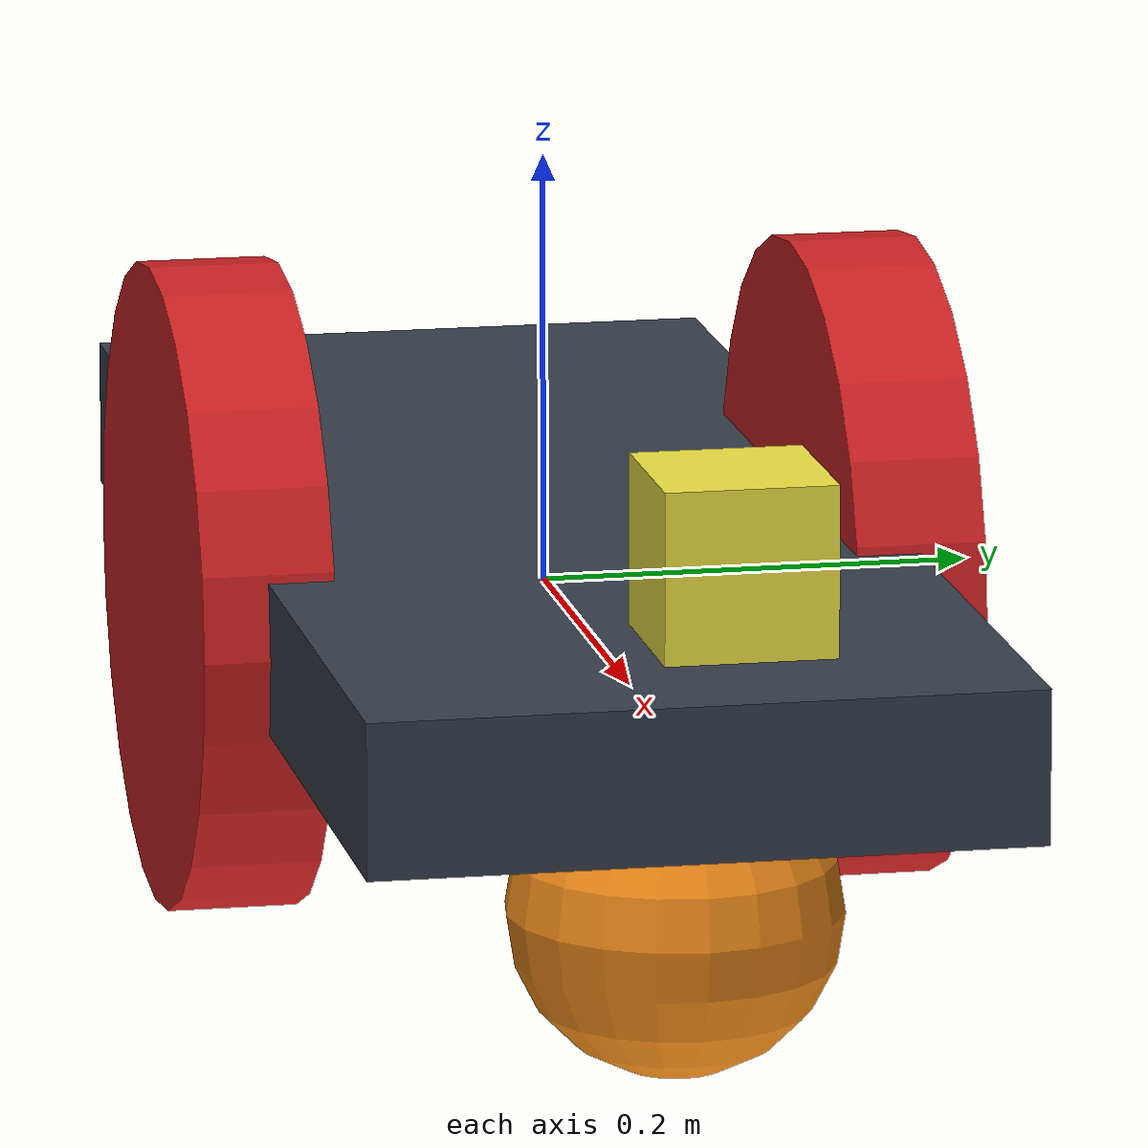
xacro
<?xml version="1.0"?>
<robot xmlns:xacro="http://www.ros.org/wiki/xacro" name="robot_xacro">
<xacro:include filename="$(find exp_assignment3)/urdf/robot.gazebo"/>

	<xacro:property name="length_wheel" value="0.06" />
	<xacro:property name="radius_wheel" value="0.15" />

	<xacro:macro name="default_inertial" params="mass">
               <inertial>
                       <mass value="${mass}" />
                       <origin rpy="0 1.5707 1.5707" xyz="0 0 0"/>
                       <inertia ixx="0.000526666666667" ixy="0" ixz="0" iyy="0.000526666666667" iyz="0" izz="0.001"/>
               </inertial>
	</xacro:macro>

    <xacro:macro name="wheel_geometry">
		<geometry>
       			<cylinder length="${length_wheel}" radius="${radius_wheel}"/>
     	</geometry>
	</xacro:macro>

  <material name="black">
    <color rgba="0.0 0.0 0.0 1.0"/>
  </material>
  <material name="blue">
    <color rgba="0.203125 0.23828125 0.28515625 1.0"/>
  </material>
  <material name="green">
    <color rgba="0.0 0.8 0.0 1.0"/>
  </material>
  <material name="grey">
    <color rgba="0.2 0.2 0.2 1.0"/>
  </material>
  <material name="orange">
    <color rgba="1.0 0.423529411765 0.0392156862745 1.0"/>
  </material>
  <material name="brown">
    <color rgba="0.870588235294 0.811764705882 0.764705882353 1.0"/>
  </material>
  <material name="red">
    <color rgba="0.80078125 0.12890625 0.1328125 1.0"/>
  </material>
  <material name="white">
    <color rgba="1.0 1.0 1.0 1.0"/>
  </material>

	    <!--#################  LINK PROPERTIES  ############## -->
	   <link name="link_chassis">
    <!-- pose and inertial -->
    <pose>0 0 0.1 0 0 0</pose>
    <inertial>
      <mass value="5"/>
      <origin rpy="0 0 0" xyz="0 0 0.1"/>
      <inertia ixx="0.0395416666667" ixy="0" ixz="0" iyy="0.106208333333" iyz="0" izz="0.106208333333"/>
    </inertial>
    <!-- body -->
    <collision name="collision_chassis">
      <geometry>
        <box size="0.75 0.30 0.07"/>
      </geometry>
    </collision>
    <visual>
      <origin rpy="0 0 0" xyz="0 0 0"/>
      <geometry>
        <box size="0.75 0.30 0.07"/>
      </geometry>
      <material name="blue"/>
    </visual>
    <!-- caster front -->
    <collision name="caster_front_collision">
      <origin rpy=" 0 0 0" xyz="0.525 0 -0.075"/>
      <geometry>
        <sphere radius="0.075"/>
      </geometry>
    </collision>
    <visual name="caster_front_visual">
      <origin rpy=" 0 0 0" xyz="0.3 0 -0.075"/>
      <geometry>
        <sphere radius="0.075"/>
      </geometry>
    </visual>
  </link>

   <link name="link_right_wheel">
    <xacro:default_inertial mass="0.2"/>
    <collision name="link_right_wheel_collision">
      <origin rpy="0 1.5707 1.5707" xyz="0 0 0"/>
      <xacro:wheel_geometry />
    </collision>
    <visual name="link_right_wheel_visual">
      <origin rpy="0 1.5707 1.5707" xyz="0 0 0"/>
      <xacro:wheel_geometry />
      <material name="red"/>
    </visual>
  </link>

   <link name="link_left_wheel">
    <xacro:default_inertial mass="0.2"/>
    <collision name="link_left_wheel_collision">
      <origin rpy="0 1.5707 1.5707" xyz="0 0 0"/>
      <xacro:wheel_geometry />
    </collision>
    <visual name="link_left_wheel_visual">
      <origin rpy="0 1.5707 1.5707" xyz="0 0 0"/>
      <xacro:wheel_geometry />
      <material name="red"/>
    </visual>
  </link>

  <!--###############################################
                Joint definitions
  ####################################################-->
  <joint name="joint_right_wheel" type="continuous">
    <origin rpy="0 0 0" xyz="-0.02 0.15 0"/>
    <child link="link_right_wheel"/>
    <parent link="link_chassis"/>
    <axis rpy="0 0 0" xyz="0 1 0"/>
    <limit effort="10000" velocity="1000"/>
    <joint_properties damping="1.0" friction="1.0"/>
  </joint>

  <joint name="joint_left_wheel" type="continuous">
    <origin rpy="0 0 0" xyz="-0.02 -0.15 0"/>
    <child link="link_left_wheel"/>
    <parent link="link_chassis"/>
    <axis rpy="0 0 0" xyz="0 1 0"/>
    <limit effort="10000" velocity="1000"/>
    <joint_properties damping="1.0" friction="1.0"/>
  </joint>
  <!--###################LASER LINK and Joint-->
  <link name="hokuyo_link">
	    <collision>
	      <origin xyz="0 0 0.00375" rpy="0 0 0"/>
	      <geometry>
		<box size="0.075 0.075 0.075"/>
	      </geometry>
	    </collision>
	    <visual>
	      <origin xyz="0 0 0.0375" rpy="0 0 0"/>
	      <geometry>
		<box size="0.075 0.075 0.075"/>
	      </geometry>

	    </visual>
	    <inertial>
	      <mass value="1e-5" />
	      <origin xyz="0 0 0" rpy="0 0 0"/>
	      <inertia ixx="1e-6" ixy="0" ixz="0" iyy="1e-6" iyz="0" izz="1e-6" />
	    </inertial>
  </link>

  <joint name="hokuyo_joint" type="fixed">
	    <axis xyz="0 1 0" />
	    <origin xyz="0.42 0 0.075" rpy="0 0 0"/>
	    <parent link="link_chassis"/>
	    <child link="hokuyo_link"/>
	 </joint>
<!--######################CAMERA LINK and JOINT ##################-->

   <link name="camera_link">
	   <collision>
	      <origin xyz="0 0 0.00375" rpy="0 0 0"/>
	      <geometry>
		<box size="0.075 0.075 0.075"/>
	      </geometry>
	    </collision>
	    <visual>
	      <origin xyz="0 0 0.0375" rpy="0 0 0"/>
	      <geometry>
		<box size="0.075 0.075 0.075"/>
	      </geometry>

	    </visual>
	    <inertial>
	      <mass value="1e-5" />
	      <origin xyz="0 0 0" rpy="0 0 0"/>
	      <inertia ixx="1e-6" ixy="0" ixz="0" iyy="1e-6" iyz="0" izz="1e-6" />
	    </inertial>
  </link>

  <joint name="camera_joint" type="fixed">
	    <axis xyz="0 1 0" />
	    <origin xyz="0.42 0 0.075" rpy="0 0 0"/>
	    <parent link="link_chassis"/>
	    <child link="camera_link"/>
	 </joint>

</robot>
